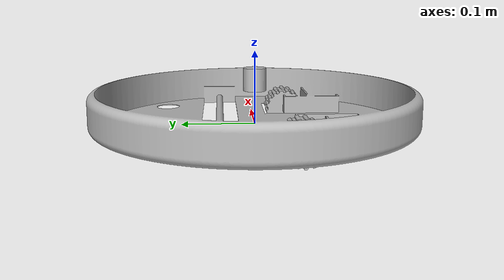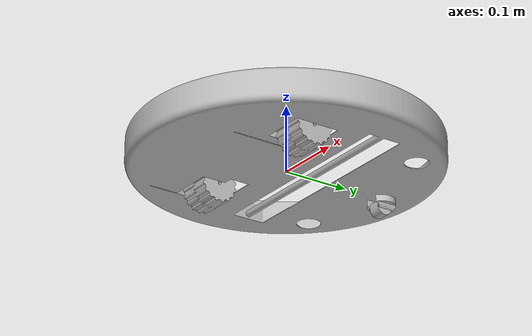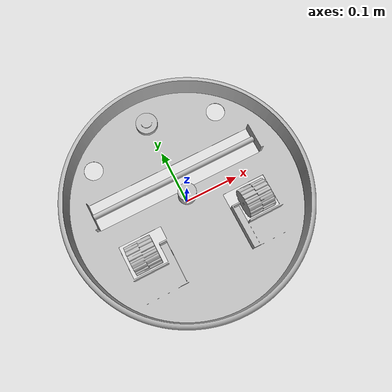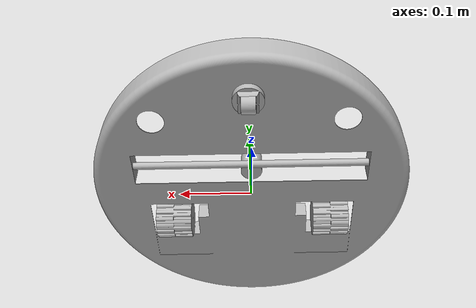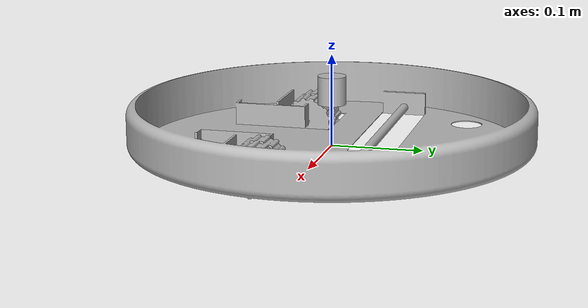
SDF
<sdf version="1.9">
<model name="vacuum_cleaner" canonical_link="body_link">
  <joint name="caestar_wheel_joint_joint" type="continuous">
    <pose relative_to="body_link">0.00000 0.00000 0.00000 0.00000 0.00000 0.00000</pose>
    <parent>body_link</parent>
    <child>caestar_wheel_joint_link</child>
    <axis>
      <limit>
        <lower>0</lower>
        <upper>0</upper>
        <effort>0.00000</effort>
        <velocity>0.00000</velocity>
      </limit>
      <xyz>0.00000 0.00000 1.00000</xyz>
    </axis>
  </joint>
  <joint name="caestar_wheel_real_joint" type="continuous">
    <pose relative_to="caestar_wheel_joint_link">0.00000 -0.00000 -0.00000 0.00000 0.00000 -0.00000</pose>
    <parent>caestar_wheel_joint_link</parent>
    <child>caestar_wheel_link</child>
    <axis>
      <limit>
        <lower>0</lower>
        <upper>0</upper>
        <effort>0.00000</effort>
        <velocity>0.00000</velocity>
      </limit>
      <xyz>1.00000 0.00000 0.00000</xyz>
    </axis>
  </joint>
  <joint name="left_wheel_joint" type="continuous">
    <pose relative_to="body_link">0.00000 0.00000 0.00000 0.00000 0.00000 0.00000</pose>
    <parent>body_link</parent>
    <child>left_wheel_link</child>
    <axis>
      <limit>
        <lower>0</lower>
        <upper>0</upper>
        <effort>0.00000</effort>
        <velocity>0.00000</velocity>
      </limit>
      <xyz>-1.00000 0.00000 0.00000</xyz>
    </axis>
  </joint>

  <joint name="lidar_joint" type="fixed">
    <pose relative_to="body_link">0.00000 0.00000 0.00000 0.00000 0.00000 0.00000</pose>
    <parent>body_link</parent>
    <child>Cylinder_link.001</child>
    <axis/>
  </joint>

  <joint name="right_wheel_joint" type="continuous">
    <pose relative_to="body_link">0.00000 0.00000 0.00000 0.00000 0.00000 0.00000</pose>
    <parent>body_link</parent>
    <child>right_wheel_link</child>
    <axis>
      <limit>
        <lower>0</lower>
        <upper>0</upper>
        <effort>0.00000</effort>
        <velocity>0.00000</velocity>
      </limit>
      <xyz>1.00000 0.00000 0.00000</xyz>
    </axis>
  </joint>
  <link name="Cylinder_link.001">
    <collision name="Cylinder_collision">
      <pose relative_to="Cylinder_link.001">0.00000 0.00000 0.06253 0.00000 0.00000 0.00000</pose>
      <geometry>
        <cylinder>
          <radius>0.01676</radius>
          <length>0.03351</length>
        </cylinder>
      </geometry>
      <surface>
        <contact/>
      </surface>
    </collision>
    <visual name="Cylinder">
      <pose relative_to="Cylinder_link.001">0.00000 0.00000 -0.00000 0.00000 0.00000 0.00000</pose>
      <geometry>
        <mesh>
          <uri>../meshes/stl/Cylinder.005.stl</uri>
          <scale>1.00000 1.00000 1.00000</scale>
        </mesh>
      </geometry>
    </visual>

        <sensor name="laser" type="ray">
          <pose relative_to="Cylinder_link.001">0.00000 0.00000 0.06253 0.00000 0.00000 0.00000</pose>
          <ray>
          <scan>
          <horizontal>
              <samples>360</samples>
              <resolution>1</resolution>
              <min_angle>-3.14</min_angle>
              <max_angle>3.14</max_angle>
          </horizontal>
          </scan>
          <range>
          <min>0.08</min>
          <max>10</max>
          <resolution>0.05</resolution>
          </range>
      </ray>
      <always_on>1</always_on>
      <update_rate>10</update_rate>
      <visualize>true</visualize>

      <plugin name='laser' filename='libgazebo_ros_ray_sensor.so'>
          <ros>
              <remapping>~/out:=/scan</remapping>
          </ros>
          <output_type>sensor_msgs/LaserScan</output_type>
          <frame_name>laser_link</frame_name>
          <robot_base_frame>base_link</robot_base_frame>
      </plugin>
  </sensor>
  </link>
  <link name="body_link">
    <collision name="body_collision">
      <pose relative_to="body_link">0.00000 0.00000 0.00000 0.00000 0.00000 0.00000</pose>
      <geometry>
        <cylinder>
          <radius>0.22000</radius>
          <length>0.05000</length>
        </cylinder>
      </geometry>
      <surface>
        <contact/>
      </surface>
    </collision>
    <collision name="body_collision.000">
      <pose relative_to="body_link">0.00000 0.00000 0.02500 0.00000 0.00000 -0.00000</pose>
      <geometry>
        <cylinder>
          <radius>0.22000</radius>
          <length>0.05000</length>
        </cylinder>
      </geometry>
      <surface>
        <contact/>
      </surface>
    </collision>
    <inertial>
      <inertia>
        <ixx>0.02462</ixx>
        <ixy>-0.00000</ixy>
        <ixz>0.00000</ixz>
        <iyy>0.02462</iyy>
        <iyz>0.00000</iyz>
        <izz>0.04840</izz>
      </inertia>
      <pose relative_to="body_link">0.00000 0.00000 -0.00000 0.00000 0.00000 0.00000</pose>
      <mass>2.00000</mass>
    </inertial>
    <visual name="body">
      <pose relative_to="body_link">0.00000 0.00000 0.00000 0.00000 0.00000 0.00000</pose>
      <geometry>
        <mesh>
          <uri>../meshes/stl/korp.stl</uri>
          <scale>1.00000 1.00000 1.00000</scale>
        </mesh>
      </geometry>
    </visual>
  </link>
  <link name="caestar_wheel_joint_link">
    <visual name="caestar_wheel_joint">
      <pose relative_to="caestar_wheel_joint_link">0.00000 -0.00000 -0.00000 0.00000 0.00000 -0.00000</pose>
      <geometry>
        <mesh>
          <uri>../meshes/stl/pered koleso.stl</uri>
          <scale>1.00000 1.00000 1.00000</scale>
        </mesh>
      </geometry>
    </visual>
  </link>
  <link name="caestar_wheel_link">
    <collision name="caestar_wheel_collision">
      <pose relative_to="caestar_wheel_link">0.00000 0.00000 -0.00000 0.00000 0.00000 0.00000</pose>
      <geometry>
        <cylinder>
          <radius>0.00900</radius>
          <length>0.02400</length>
        </cylinder>
      </geometry>
      <surface>
        <contact/>
      </surface>
    </collision>
    <inertial>
      <inertia>
        <ixx>0.00014</ixx>
        <ixy>0.00000</ixy>
        <ixz>0.00000</ixz>
        <iyy>0.00013</iyy>
        <iyz>0.00000</iyz>
        <izz>0.00013</izz>
      </inertia>
      <pose relative_to="caestar_wheel_link">0.00000 0.00000 0.00000 0.00000 0.00000 0.00000</pose>
      <mass>2.00000</mass>
    </inertial>
    <visual name="caestar_wheel">
      <pose relative_to="caestar_wheel_link">0.00000 0.00000 -0.00000 0.00000 0.00000 0.00000</pose>
      <geometry>
        <mesh>
          <uri>../meshes/stl/pered koleso.001.stl</uri>
          <scale>1.00000 1.00000 1.00000</scale>
        </mesh>
      </geometry>
    </visual>
  </link>
  <link name="left_wheel_link">
    <collision name="left_wheel_collision">
      <pose relative_to="left_wheel_link">0.00000 0.00000 -0.00000 0.00000 0.00000 0.00000</pose>
      <geometry>
        <cylinder>
          <radius>0.02500</radius>
          <length>0.05471</length>
        </cylinder>
      </geometry>
      <surface>
        <contact/>
      </surface>
    </collision>
    <inertial>
      <inertia>
        <ixx>0.00075</ixx>
        <ixy>-0.00000</ixy>
        <ixz>-0.00000</ixz>
        <iyy>0.00079</iyy>
        <iyz>0.00000</iyz>
        <izz>0.00079</izz>
      </inertia>
      <pose relative_to="left_wheel_link">0.00000 0.00000 0.00000 0.00000 0.00000 0.00000</pose>
      <mass>2.00000</mass>
    </inertial>
    <visual name="left_wheel">
      <pose relative_to="left_wheel_link">0.00000 0.00000 -0.00000 0.00000 0.00000 0.00000</pose>
      <geometry>
        <mesh>
          <uri>../meshes/stl/koleso.001.stl</uri>
          <scale>1.00000 1.00000 1.00000</scale>
        </mesh>
      </geometry>
    </visual>
  </link>
  <link name="right_wheel_link">
    <collision name="right_wheel_collision">
      <pose relative_to="right_wheel_link">0.00000 -0.00000 -0.00000 0.00000 0.00000 0.00000</pose>
      <geometry>
        <cylinder>
          <radius>0.02500</radius>
          <length>0.05471</length>
        </cylinder>
      </geometry>
      <surface>
        <contact/>
      </surface>
    </collision>
    <inertial>
      <inertia>
        <ixx>0.00075</ixx>
        <ixy>-0.00000</ixy>
        <ixz>-0.00000</ixz>
        <iyy>0.00079</iyy>
        <iyz>-0.00000</iyz>
        <izz>0.00079</izz>
      </inertia>
      <pose relative_to="right_wheel_link">0.00000 -0.00000 0.00000 0.00000 0.00000 0.00000</pose>
      <mass>2.00000</mass>
    </inertial>
    <visual name="right_wheel">
      <pose relative_to="right_wheel_link">0.00000 -0.00000 -0.00000 0.00000 0.00000 0.00000</pose>
      <geometry>
        <mesh>
          <uri>../meshes/stl/koleso.003.stl</uri>
          <scale>1.00000 1.00000 1.00000</scale>
        </mesh>
      </geometry>
    </visual>
  </link>
</model>
</sdf>
